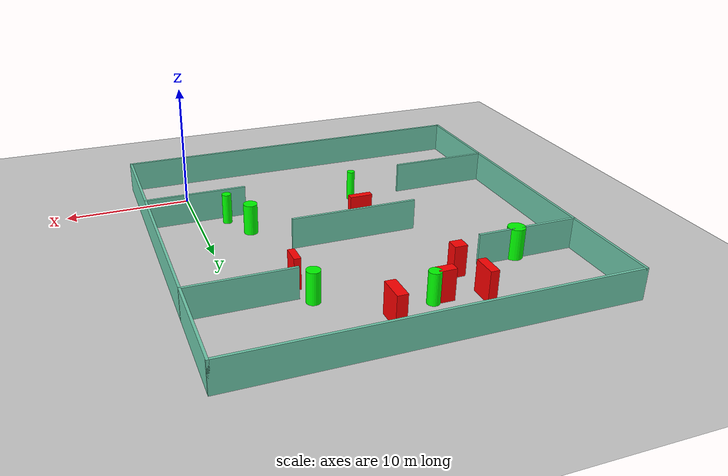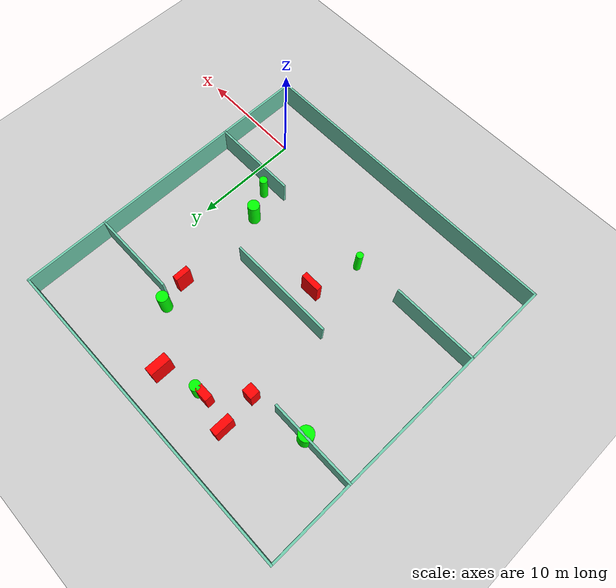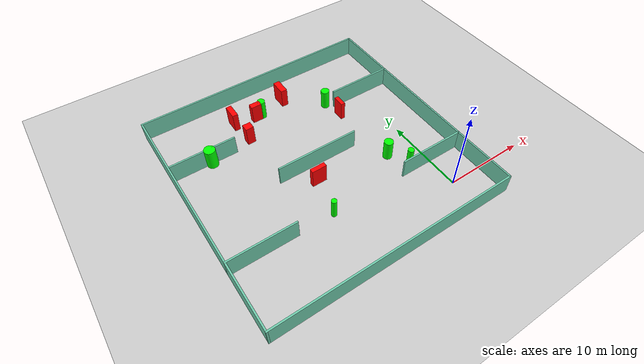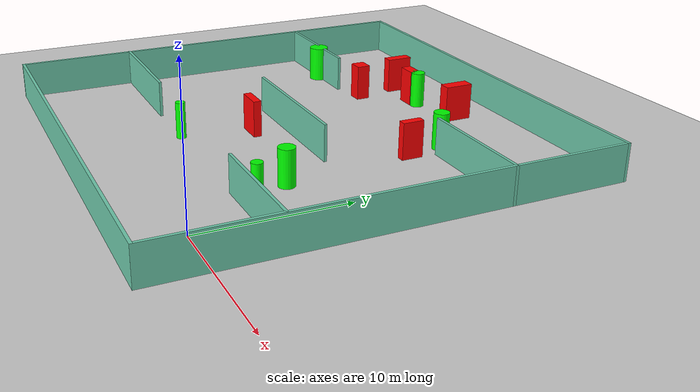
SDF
<sdf version="1.7">
 <world name="default">
  <light name="sun" type="directional">
   <pose>0 0 10 0 -0 0</pose>
   <diffuse>0.8 0.8 0.8 1</diffuse>
   <specular>0.2 0.2 0.2 1</specular>
   <attenuation>
    <range>1000</range>
    <constant>0.9</constant>
    <linear>0.01</linear>
    <quadratic>0.001</quadratic>
   </attenuation>
   <direction>-0.5 0.1 -0.9</direction>
   <spot><inner_angle>0</inner_angle><outer_angle>0</outer_angle><falloff>0</falloff></spot>
  </light>
  <model name="ground_plane">
   <static>1</static>
   <link name="link">
    <collision name="collision">
     <geometry><plane><normal>0 0 1</normal><size>100 100</size></plane></geometry>
     <surface>
      <contact><collide_bitmask>65535</collide_bitmask></contact>
      <friction><ode><mu>100</mu><mu2>50</mu2></ode></friction>
     </surface>
    </collision>
    <visual name="visual">
     <cast_shadows>0</cast_shadows>
     <geometry><plane><normal>0 0 1</normal><size>100 100</size></plane></geometry>
     <material>
      <script><uri>file://media/materials/scripts/gazebo.material</uri><name>Gazebo/Grey</name></script>
     </material>
    </visual>
   </link>
  </model>
  <gravity>0 0 -9.8</gravity>
  <magnetic_field>6e-06 2.3e-05 -4.2e-05</magnetic_field>
  <atmosphere type="adiabatic"/>
  <physics type="ode">
   <max_step_size>0.001</max_step_size>
   <real_time_factor>1</real_time_factor>
   <real_time_update_rate>1000</real_time_update_rate>
  </physics>
  <scene><ambient>0.4 0.4 0.4 1</ambient><background>0.7 0.7 0.7 1</background><shadows>1</shadows></scene>
  <spherical_coordinates>
   <surface_model>EARTH_WGS84</surface_model>
   <latitude_deg>0</latitude_deg>
   <longitude_deg>0</longitude_deg>
   <elevation>0</elevation>
   <heading_deg>0</heading_deg>
  </spherical_coordinates>
  <model name="my_base_walls">
   <link name="Wall_10">
    <collision name="Wall_10_Collision">
     <geometry><box><size>8.2 0.2 2.5</size></box></geometry>
     <pose>0 0 1.25 0 -0 0</pose>
    </collision>
    <visual name="Wall_10_Visual">
     <pose>0 0 1.25 0 -0 0</pose>
     <geometry><box><size>8.2 0.2 2.5</size></box></geometry>
     <material>
      <script><uri>file://media/materials/scripts/gazebo.material</uri><name>Gazebo/Grey</name></script>
      <ambient>0.435294 0.796078 0.67451 1</ambient>
     </material>
     <meta><layer>0</layer></meta>
    </visual>
    <pose>-11 -7 0 0 -0 0</pose>
   </link>
   <link name="Wall_12">
    <collision name="Wall_12_Collision">
     <geometry><box><size>8.2 0.2 2.5</size></box></geometry>
     <pose>0 0 1.25 0 -0 0</pose>
    </collision>
    <visual name="Wall_12_Visual">
     <pose>0 0 1.25 0 -0 0</pose>
     <geometry><box><size>8.2 0.2 2.5</size></box></geometry>
     <material>
      <script><uri>file://media/materials/scripts/gazebo.material</uri><name>Gazebo/Grey</name></script>
      <ambient>0.435294 0.796078 0.67451 1</ambient>
     </material>
     <meta><layer>0</layer></meta>
    </visual>
    <pose>-11 7 0 0 -0 0</pose>
   </link>
   <link name="Wall_14">
    <collision name="Wall_14_Collision">
     <geometry><box><size>8.2 0.2 2.5</size></box></geometry>
     <pose>0 0 1.25 0 -0 0</pose>
    </collision>
    <visual name="Wall_14_Visual">
     <pose>0 0 1.25 0 -0 0</pose>
     <geometry><box><size>8.2 0.2 2.5</size></box></geometry>
     <material>
      <script><uri>file://media/materials/scripts/gazebo.material</uri><name>Gazebo/Grey</name></script>
      <ambient>0.435294 0.796078 0.67451 1</ambient>
     </material>
     <meta><layer>0</layer></meta>
    </visual>
    <pose>11 7 0 0 -0 3.14159</pose>
   </link>
   <link name="Wall_16">
    <collision name="Wall_16_Collision">
     <geometry><box><size>10.2 0.2 2.5</size></box></geometry>
     <pose>0 0 1.25 0 -0 0</pose>
    </collision>
    <visual name="Wall_16_Visual">
     <pose>0 0 1.25 0 -0 0</pose>
     <geometry><box><size>10.2 0.2 2.5</size></box></geometry>
     <material>
      <script><uri>file://media/materials/scripts/gazebo.material</uri><name>Gazebo/Grey</name></script>
      <ambient>0.435294 0.796078 0.67451 1</ambient>
     </material>
     <meta><layer>0</layer></meta>
    </visual>
    <pose>0 0 0 0 -0 3.14159</pose>
   </link>
   <link name="Wall_2">
    <collision name="Wall_2_Collision">
     <geometry><box><size>30.2 0.2 2.5</size></box></geometry>
     <pose>0 0 1.25 0 -0 0</pose>
    </collision>
    <visual name="Wall_2_Visual">
     <pose>0 0 1.25 0 -0 0</pose>
     <geometry><box><size>30.2 0.2 2.5</size></box></geometry>
     <material>
      <script><uri>file://media/materials/scripts/gazebo.material</uri><name>Gazebo/Grey</name></script>
      <ambient>0.435294 0.796078 0.67451 1</ambient>
     </material>
     <meta><layer>0</layer></meta>
    </visual>
    <pose>0 -15 0 0 -0 3.14159</pose>
   </link>
   <link name="Wall_3">
    <collision name="Wall_3_Collision">
     <geometry><box><size>30.2 0.2 2.5</size></box></geometry>
     <pose>0 0 1.25 0 -0 0</pose>
    </collision>
    <visual name="Wall_3_Visual">
     <pose>0 0 1.25 0 -0 0</pose>
     <geometry><box><size>30.2 0.2 2.5</size></box></geometry>
     <material>
      <script><uri>file://media/materials/scripts/gazebo.material</uri><name>Gazebo/Grey</name></script>
      <ambient>0.435294 0.796078 0.67451 1</ambient>
     </material>
     <meta><layer>0</layer></meta>
    </visual>
    <pose>-15 0 0 0 -0 1.5708</pose>
   </link>
   <link name="Wall_4">
    <collision name="Wall_4_Collision">
     <geometry><box><size>30.2 0.2 2.5</size></box></geometry>
     <pose>0 0 1.25 0 -0 0</pose>
    </collision>
    <visual name="Wall_4_Visual">
     <pose>0 0 1.25 0 -0 0</pose>
     <geometry><box><size>30.2 0.2 2.5</size></box></geometry>
     <material>
      <script><uri>file://media/materials/scripts/gazebo.material</uri><name>Gazebo/Grey</name></script>
      <ambient>0.435294 0.796078 0.67451 1</ambient>
     </material>
     <meta><layer>0</layer></meta>
    </visual>
    <pose>0 15 0 0 -0 0</pose>
   </link>
   <link name="Wall_6">
    <collision name="Wall_6_Collision">
     <geometry><box><size>30.2 0.2 2.5</size></box></geometry>
     <pose>0 0 1.25 0 -0 0</pose>
    </collision>
    <visual name="Wall_6_Visual">
     <pose>0 0 1.25 0 -0 0</pose>
     <geometry><box><size>30.2 0.2 2.5</size></box></geometry>
     <material>
      <script><uri>file://media/materials/scripts/gazebo.material</uri><name>Gazebo/Grey</name></script>
      <ambient>0.435294 0.796078 0.67451 1</ambient>
     </material>
     <meta><layer>0</layer></meta>
    </visual>
    <pose>15 0 0 0 -0 1.5708</pose>
   </link>
   <link name="Wall_8">
    <collision name="Wall_8_Collision">
     <geometry><box><size>8.2 0.2 2.5</size></box></geometry>
     <pose>0 0 1.25 0 -0 0</pose>
    </collision>
    <visual name="Wall_8_Visual">
     <pose>0 0 1.25 0 -0 0</pose>
     <geometry><box><size>8.2 0.2 2.5</size></box></geometry>
     <material>
      <script><uri>file://media/materials/scripts/gazebo.material</uri><name>Gazebo/Grey</name></script>
      <ambient>0.435294 0.796078 0.67451 1</ambient>
     </material>
     <meta><layer>0</layer></meta>
    </visual>
    <pose>11 -7 0 0 -0 3.14159</pose>
   </link>
   <static>1</static>
   <pose>-11 11 0 0 -0 0</pose>
  </model>
  <model name="cylinder1">
   <static>1</static>
   <link name="link">
    <inertial>
     <mass>1</mass>
     <inertia><ixx>0.5</ixx><ixy>0</ixy><ixz>0</ixz><iyy>0.5</iyy><iyz>0</iyz><izz>1</izz></inertia>
    </inertial>
    <collision name="collision">
     <geometry><cylinder><radius>0.528043151757846</radius><length>2.5</length></cylinder></geometry>
    </collision>
    <visual name="visual">
     <geometry><cylinder><radius>0.528043151757846</radius><length>2.5</length></cylinder></geometry>
     <material>
      <ambient>0 1 0 1</ambient>
      <diffuse>0 1 0 1</diffuse>
      <specular>0.1 0.1 0.1 1</specular>
      <emissive>0 0 0 0</emissive>
     </material>
    </visual>
   </link>
   <pose>-4.858348474408105 18.741826294073704 1.25 0 0 0</pose>
  </model>
  <model name="cylinder2">
   <static>1</static>
   <link name="link">
    <inertial>
     <mass>1</mass>
     <inertia><ixx>0.5</ixx><ixy>0</ixy><ixz>0</ixz><iyy>0.5</iyy><iyz>0</iyz><izz>1</izz></inertia>
    </inertial>
    <collision name="collision">
     <geometry><cylinder><radius>0.4797728011898865</radius><length>2.5</length></cylinder></geometry>
    </collision>
    <visual name="visual">
     <geometry><cylinder><radius>0.4797728011898865</radius><length>2.5</length></cylinder></geometry>
     <material>
      <ambient>0 1 0 1</ambient>
      <diffuse>0 1 0 1</diffuse>
      <specular>0.1 0.1 0.1 1</specular>
      <emissive>0 0 0 0</emissive>
     </material>
    </visual>
   </link>
   <pose>-12.468780387646849 21.599434698312386 1.25 0 0 0</pose>
  </model>
  <model name="cylinder3">
   <static>1</static>
   <link name="link">
    <inertial>
     <mass>1</mass>
     <inertia><ixx>0.5</ixx><ixy>0</ixy><ixz>0</ixz><iyy>0.5</iyy><iyz>0</iyz><izz>1</izz></inertia>
    </inertial>
    <collision name="collision">
     <geometry><cylinder><radius>0.37267885561129005</radius><length>2.5</length></cylinder></geometry>
    </collision>
    <visual name="visual">
     <geometry><cylinder><radius>0.37267885561129005</radius><length>2.5</length></cylinder></geometry>
     <material>
      <ambient>0 1 0 1</ambient>
      <diffuse>0 1 0 1</diffuse>
      <specular>0.1 0.1 0.1 1</specular>
      <emissive>0 0 0 0</emissive>
     </material>
    </visual>
   </link>
   <pose>-2.3266283442213087 4.957632664840504 1.25 0 0 0</pose>
  </model>
  <model name="cylinder4">
   <static>1</static>
   <link name="link">
    <inertial>
     <mass>1</mass>
     <inertia><ixx>0.5</ixx><ixy>0</ixy><ixz>0</ixz><iyy>0.5</iyy><iyz>0</iyz><izz>1</izz></inertia>
    </inertial>
    <collision name="collision">
     <geometry><cylinder><radius>0.68219582467342</radius><length>2.5</length></cylinder></geometry>
    </collision>
    <visual name="visual">
     <geometry><cylinder><radius>0.68219582467342</radius><length>2.5</length></cylinder></geometry>
     <material>
      <ambient>0 1 0 1</ambient>
      <diffuse>0 1 0 1</diffuse>
      <specular>0.1 0.1 0.1 1</specular>
      <emissive>0 0 0 0</emissive>
     </material>
    </visual>
   </link>
   <pose>-21.135581102086615 17.833747808077604 1.25 0 0 0</pose>
  </model>
  <model name="cylinder5">
   <static>1</static>
   <link name="link">
    <inertial>
     <mass>1</mass>
     <inertia><ixx>0.5</ixx><ixy>0</ixy><ixz>0</ixz><iyy>0.5</iyy><iyz>0</iyz><izz>1</izz></inertia>
    </inertial>
    <collision name="collision">
     <geometry><cylinder><radius>0.3246452069579398</radius><length>2.5</length></cylinder></geometry>
    </collision>
    <visual name="visual">
     <geometry><cylinder><radius>0.3246452069579398</radius><length>2.5</length></cylinder></geometry>
     <material>
      <ambient>0 1 0 1</ambient>
      <diffuse>0 1 0 1</diffuse>
      <specular>0.1 0.1 0.1 1</specular>
      <emissive>0 0 0 0</emissive>
     </material>
    </visual>
   </link>
   <pose>-13.494090951098265 4.027753151910677 1.25 0 0 0</pose>
  </model>
  <model name="cylinder6">
   <static>1</static>
   <link name="link">
    <inertial>
     <mass>1</mass>
     <inertia><ixx>0.5</ixx><ixy>0</ixy><ixz>0</ixz><iyy>0.5</iyy><iyz>0</iyz><izz>1</izz></inertia>
    </inertial>
    <collision name="collision">
     <geometry><cylinder><radius>0.5542933072812011</radius><length>2.5</length></cylinder></geometry>
    </collision>
    <visual name="visual">
     <geometry><cylinder><radius>0.5542933072812011</radius><length>2.5</length></cylinder></geometry>
     <material>
      <ambient>0 1 0 1</ambient>
      <diffuse>0 1 0 1</diffuse>
      <specular>0.1 0.1 0.1 1</specular>
      <emissive>0 0 0 0</emissive>
     </material>
    </visual>
   </link>
   <pose>-3.640762178270947 7.363275398105134 1.25 0 0 0</pose>
  </model>
  <model name="box1">
   <static>1</static>
   <link name="link">
    <inertial>
     <mass>1</mass>
     <inertia><ixx>0.083</ixx><ixy>0</ixy><ixz>0</ixz><iyy>0.083</iyy><iyz>0</iyz><izz>0.083</izz></inertia>
    </inertial>
    <collision name="collision">
     <geometry><box><size>0.534497212359762 1.4645377226575107 2.5</size></box></geometry>
    </collision>
    <visual name="visual">
     <geometry><box><size>0.534497212359762 1.4645377226575107 2.5</size></box></geometry>
     <material>
      <ambient>1 0 0 1</ambient>
      <diffuse>1 0 0 1</diffuse>
      <specular>0.1 0.1 0.1 1</specular>
      <emissive>0 0 0 0</emissive>
     </material>
    </visual>
    <sensor name="my_contact" type="contact">
     <contact><collision>box_collision</collision><topic>__default_topic__</topic></contact>
    </sensor>
   </link>
   <pose>-4.340976412099753 16.219006883378796 1.25 0 0 0</pose>
  </model>
  <model name="box2">
   <static>1</static>
   <link name="link">
    <inertial>
     <mass>1</mass>
     <inertia><ixx>0.083</ixx><ixy>0</ixy><ixz>0</ixz><iyy>0.083</iyy><iyz>0</iyz><izz>0.083</izz></inertia>
    </inertial>
    <collision name="collision">
     <geometry><box><size>0.818365881009129 1.967507310164362 2.5</size></box></geometry>
    </collision>
    <visual name="visual">
     <geometry><box><size>0.818365881009129 1.967507310164362 2.5</size></box></geometry>
     <material>
      <ambient>1 0 0 1</ambient>
      <diffuse>1 0 0 1</diffuse>
      <specular>0.1 0.1 0.1 1</specular>
      <emissive>0 0 0 0</emissive>
     </material>
    </visual>
    <sensor name="my_contact" type="contact">
     <contact><collision>box_collision</collision><topic>__default_topic__</topic></contact>
    </sensor>
   </link>
   <pose>-9.123056283273854 22.642633944942514 1.25 0 0 0</pose>
  </model>
  <model name="box3">
   <static>1</static>
   <link name="link">
    <inertial>
     <mass>1</mass>
     <inertia><ixx>0.083</ixx><ixy>0</ixy><ixz>0</ixz><iyy>0.083</iyy><iyz>0</iyz><izz>0.083</izz></inertia>
    </inertial>
    <collision name="collision">
     <geometry><box><size>0.6819874677469524 1.833031881870153 2.5</size></box></geometry>
    </collision>
    <visual name="visual">
     <geometry><box><size>0.6819874677469524 1.833031881870153 2.5</size></box></geometry>
     <material>
      <ambient>1 0 0 1</ambient>
      <diffuse>1 0 0 1</diffuse>
      <specular>0.1 0.1 0.1 1</specular>
      <emissive>0 0 0 0</emissive>
     </material>
    </visual>
    <sensor name="my_contact" type="contact">
     <contact><collision>box_collision</collision><topic>__default_topic__</topic></contact>
    </sensor>
   </link>
   <pose>-16.210492042148843 22.065873547818622 1.25 0 0 0</pose>
  </model>
  <model name="box4">
   <static>1</static>
   <link name="link">
    <inertial>
     <mass>1</mass>
     <inertia><ixx>0.083</ixx><ixy>0</ixy><ixz>0</ixz><iyy>0.083</iyy><iyz>0</iyz><izz>0.083</izz></inertia>
    </inertial>
    <collision name="collision">
     <geometry><box><size>1.315351693951806 0.7187287823198293 2.5</size></box></geometry>
    </collision>
    <visual name="visual">
     <geometry><box><size>1.315351693951806 0.7187287823198293 2.5</size></box></geometry>
     <material>
      <ambient>1 0 0 1</ambient>
      <diffuse>1 0 0 1</diffuse>
      <specular>0.1 0.1 0.1 1</specular>
      <emissive>0 0 0 0</emissive>
     </material>
    </visual>
    <sensor name="my_contact" type="contact">
     <contact><collision>box_collision</collision><topic>__default_topic__</topic></contact>
    </sensor>
   </link>
   <pose>-13.334732002288916 21.4867969477228 1.25 0 0 0</pose>
  </model>
  <model name="box5">
   <static>1</static>
   <link name="link">
    <inertial>
     <mass>1</mass>
     <inertia><ixx>0.083</ixx><ixy>0</ixy><ixz>0</ixz><iyy>0.083</iyy><iyz>0</iyz><izz>0.083</izz></inertia>
    </inertial>
    <collision name="collision">
     <geometry><box><size>1.82580831696275 0.540266027615609 2.5</size></box></geometry>
    </collision>
    <visual name="visual">
     <geometry><box><size>1.82580831696275 0.540266027615609 2.5</size></box></geometry>
     <material>
      <ambient>1 0 0 1</ambient>
      <diffuse>1 0 0 1</diffuse>
      <specular>0.1 0.1 0.1 1</specular>
      <emissive>0 0 0 0</emissive>
     </material>
    </visual>
    <sensor name="my_contact" type="contact">
     <contact><collision>box_collision</collision><topic>__default_topic__</topic></contact>
    </sensor>
   </link>
   <pose>-12.411156505134077 8.713984837864881 1.25 0 0 0</pose>
  </model>
  <model name="box6">
   <static>1</static>
   <link name="link">
    <inertial>
     <mass>1</mass>
     <inertia><ixx>0.083</ixx><ixy>0</ixy><ixz>0</ixz><iyy>0.083</iyy><iyz>0</iyz><izz>0.083</izz></inertia>
    </inertial>
    <collision name="collision">
     <geometry><box><size>1.004373407977925 0.9406437630026174 2.5</size></box></geometry>
    </collision>
    <visual name="visual">
     <geometry><box><size>1.004373407977925 0.9406437630026174 2.5</size></box></geometry>
     <material>
      <ambient>1 0 0 1</ambient>
      <diffuse>1 0 0 1</diffuse>
      <specular>0.1 0.1 0.1 1</specular>
      <emissive>0 0 0 0</emissive>
     </material>
    </visual>
    <sensor name="my_contact" type="contact">
     <contact><collision>box_collision</collision><topic>__default_topic__</topic></contact>
    </sensor>
   </link>
   <pose>-15.79520614931631 18.68879484054575 1.25 0 0 0</pose>
  </model>
 </world>
</sdf>
